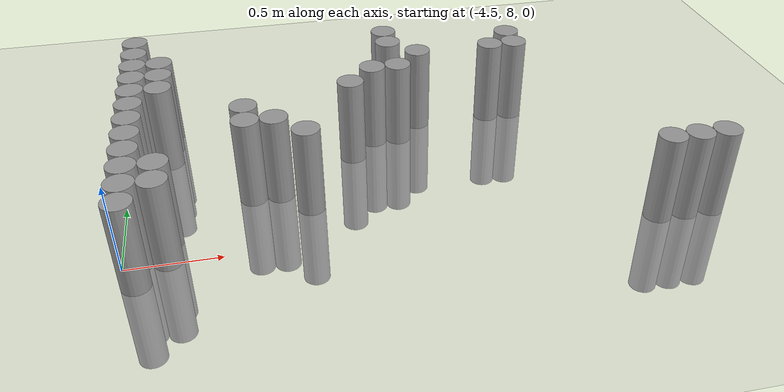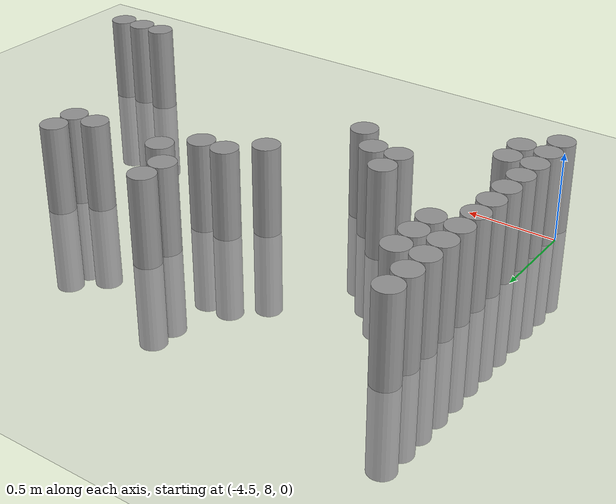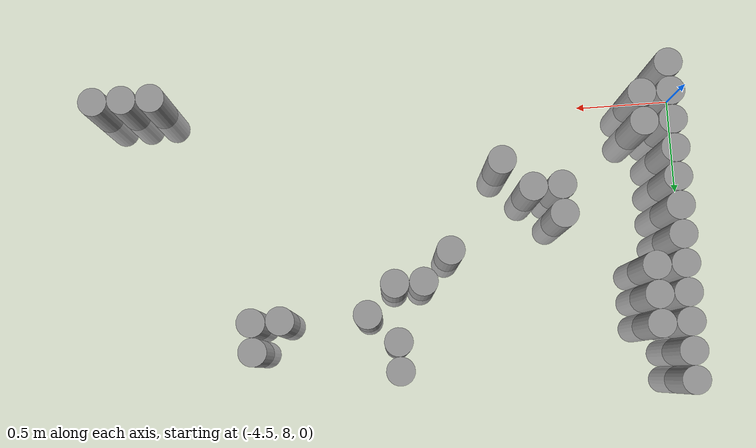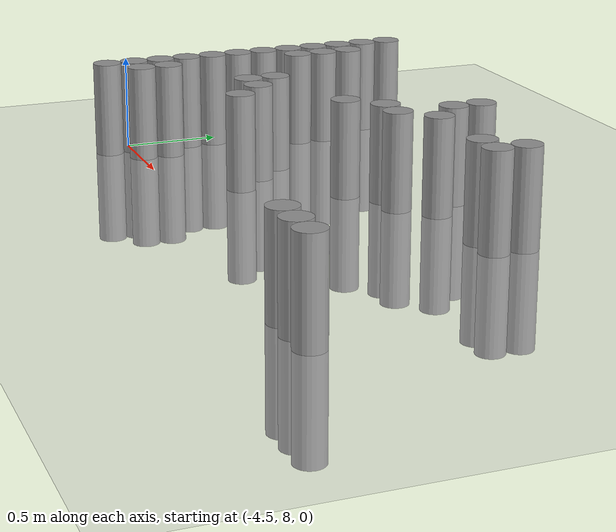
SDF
<sdf version="1.6">
 <world name="default">
  <model name="ground_plane">
   <static>1</static>
   <link name="link">
    <collision name="collision">
     <geometry><plane><normal>0 0 1</normal><size>100 100</size></plane></geometry>
     <surface><friction><ode><mu>100</mu><mu2>50</mu2></ode></friction></surface>
    </collision>
    <visual name="visual">
     <cast_shadows>0</cast_shadows>
     <geometry><plane><normal>0 0 1</normal><size>100 100</size></plane></geometry>
     <material>
      <script><uri>file://media/materials/scripts/gazebo.material</uri><name>Gazebo/Grey</name></script>
     </material>
    </visual>
   </link>
  </model>
  <model name="unit_cylinder_114">
   <pose>-4.425000 7.875000 0.000000 0.000000 0.000000 0.000000</pose>
   <link name="link">
    <inertial>
     <mass>1</mass>
     <inertia><ixx>0.145833</ixx><ixy>0</ixy><ixz>0</ixz><iyy>0.145833</iyy><iyz>0</iyz><izz>0.125</izz></inertia>
    </inertial>
    <collision name="collision">
     <geometry><cylinder><radius>0.075000</radius><length>1</length></cylinder></geometry>
    </collision>
    <visual name="visual">
     <geometry><cylinder><radius>0.075000</radius><length>1</length></cylinder></geometry>
     <material>
      <script><name>Gazebo/Grey</name><uri>file://media/materials/scripts/gazebo.material</uri></script>
     </material>
    </visual>
   </link>
  </model>
  <model name="unit_cylinder_115">
   <pose>-4.425000 8.025000 0.000000 0.000000 0.000000 0.000000</pose>
   <link name="link">
    <inertial>
     <mass>1</mass>
     <inertia><ixx>0.145833</ixx><ixy>0</ixy><ixz>0</ixz><iyy>0.145833</iyy><iyz>0</iyz><izz>0.125</izz></inertia>
    </inertial>
    <collision name="collision">
     <geometry><cylinder><radius>0.075000</radius><length>1</length></cylinder></geometry>
    </collision>
    <visual name="visual">
     <geometry><cylinder><radius>0.075000</radius><length>1</length></cylinder></geometry>
     <material>
      <script><name>Gazebo/Grey</name><uri>file://media/materials/scripts/gazebo.material</uri></script>
     </material>
    </visual>
   </link>
  </model>
  <model name="unit_cylinder_116">
   <pose>-4.425000 8.175000 0.000000 0.000000 0.000000 0.000000</pose>
   <link name="link">
    <inertial>
     <mass>1</mass>
     <inertia><ixx>0.145833</ixx><ixy>0</ixy><ixz>0</ixz><iyy>0.145833</iyy><iyz>0</iyz><izz>0.125</izz></inertia>
    </inertial>
    <collision name="collision">
     <geometry><cylinder><radius>0.075000</radius><length>1</length></cylinder></geometry>
    </collision>
    <visual name="visual">
     <geometry><cylinder><radius>0.075000</radius><length>1</length></cylinder></geometry>
     <material>
      <script><name>Gazebo/Grey</name><uri>file://media/materials/scripts/gazebo.material</uri></script>
     </material>
    </visual>
   </link>
  </model>
  <model name="unit_cylinder_117">
   <pose>-4.425000 8.325000 0.000000 0.000000 0.000000 0.000000</pose>
   <link name="link">
    <inertial>
     <mass>1</mass>
     <inertia><ixx>0.145833</ixx><ixy>0</ixy><ixz>0</ixz><iyy>0.145833</iyy><iyz>0</iyz><izz>0.125</izz></inertia>
    </inertial>
    <collision name="collision">
     <geometry><cylinder><radius>0.075000</radius><length>1</length></cylinder></geometry>
    </collision>
    <visual name="visual">
     <geometry><cylinder><radius>0.075000</radius><length>1</length></cylinder></geometry>
     <material>
      <script><name>Gazebo/Grey</name><uri>file://media/materials/scripts/gazebo.material</uri></script>
     </material>
    </visual>
   </link>
  </model>
  <model name="unit_cylinder_118">
   <pose>-4.425000 8.475000 0.000000 0.000000 0.000000 0.000000</pose>
   <link name="link">
    <inertial>
     <mass>1</mass>
     <inertia><ixx>0.145833</ixx><ixy>0</ixy><ixz>0</ixz><iyy>0.145833</iyy><iyz>0</iyz><izz>0.125</izz></inertia>
    </inertial>
    <collision name="collision">
     <geometry><cylinder><radius>0.075000</radius><length>1</length></cylinder></geometry>
    </collision>
    <visual name="visual">
     <geometry><cylinder><radius>0.075000</radius><length>1</length></cylinder></geometry>
     <material>
      <script><name>Gazebo/Grey</name><uri>file://media/materials/scripts/gazebo.material</uri></script>
     </material>
    </visual>
   </link>
  </model>
  <model name="unit_cylinder_119">
   <pose>-4.425000 8.625000 0.000000 0.000000 0.000000 0.000000</pose>
   <link name="link">
    <inertial>
     <mass>1</mass>
     <inertia><ixx>0.145833</ixx><ixy>0</ixy><ixz>0</ixz><iyy>0.145833</iyy><iyz>0</iyz><izz>0.125</izz></inertia>
    </inertial>
    <collision name="collision">
     <geometry><cylinder><radius>0.075000</radius><length>1</length></cylinder></geometry>
    </collision>
    <visual name="visual">
     <geometry><cylinder><radius>0.075000</radius><length>1</length></cylinder></geometry>
     <material>
      <script><name>Gazebo/Grey</name><uri>file://media/materials/scripts/gazebo.material</uri></script>
     </material>
    </visual>
   </link>
  </model>
  <model name="unit_cylinder_120">
   <pose>-4.425000 8.775000 0.000000 0.000000 0.000000 0.000000</pose>
   <link name="link">
    <inertial>
     <mass>1</mass>
     <inertia><ixx>0.145833</ixx><ixy>0</ixy><ixz>0</ixz><iyy>0.145833</iyy><iyz>0</iyz><izz>0.125</izz></inertia>
    </inertial>
    <collision name="collision">
     <geometry><cylinder><radius>0.075000</radius><length>1</length></cylinder></geometry>
    </collision>
    <visual name="visual">
     <geometry><cylinder><radius>0.075000</radius><length>1</length></cylinder></geometry>
     <material>
      <script><name>Gazebo/Grey</name><uri>file://media/materials/scripts/gazebo.material</uri></script>
     </material>
    </visual>
   </link>
  </model>
  <model name="unit_cylinder_121">
   <pose>-4.425000 8.925000 0.000000 0.000000 0.000000 0.000000</pose>
   <link name="link">
    <inertial>
     <mass>1</mass>
     <inertia><ixx>0.145833</ixx><ixy>0</ixy><ixz>0</ixz><iyy>0.145833</iyy><iyz>0</iyz><izz>0.125</izz></inertia>
    </inertial>
    <collision name="collision">
     <geometry><cylinder><radius>0.075000</radius><length>1</length></cylinder></geometry>
    </collision>
    <visual name="visual">
     <geometry><cylinder><radius>0.075000</radius><length>1</length></cylinder></geometry>
     <material>
      <script><name>Gazebo/Grey</name><uri>file://media/materials/scripts/gazebo.material</uri></script>
     </material>
    </visual>
   </link>
  </model>
  <model name="unit_cylinder_122">
   <pose>-4.425000 9.075000 0.000000 0.000000 0.000000 0.000000</pose>
   <link name="link">
    <inertial>
     <mass>1</mass>
     <inertia><ixx>0.145833</ixx><ixy>0</ixy><ixz>0</ixz><iyy>0.145833</iyy><iyz>0</iyz><izz>0.125</izz></inertia>
    </inertial>
    <collision name="collision">
     <geometry><cylinder><radius>0.075000</radius><length>1</length></cylinder></geometry>
    </collision>
    <visual name="visual">
     <geometry><cylinder><radius>0.075000</radius><length>1</length></cylinder></geometry>
     <material>
      <script><name>Gazebo/Grey</name><uri>file://media/materials/scripts/gazebo.material</uri></script>
     </material>
    </visual>
   </link>
  </model>
  <model name="unit_cylinder_123">
   <pose>-4.425000 9.225000 0.000000 0.000000 0.000000 0.000000</pose>
   <link name="link">
    <inertial>
     <mass>1</mass>
     <inertia><ixx>0.145833</ixx><ixy>0</ixy><ixz>0</ixz><iyy>0.145833</iyy><iyz>0</iyz><izz>0.125</izz></inertia>
    </inertial>
    <collision name="collision">
     <geometry><cylinder><radius>0.075000</radius><length>1</length></cylinder></geometry>
    </collision>
    <visual name="visual">
     <geometry><cylinder><radius>0.075000</radius><length>1</length></cylinder></geometry>
     <material>
      <script><name>Gazebo/Grey</name><uri>file://media/materials/scripts/gazebo.material</uri></script>
     </material>
    </visual>
   </link>
  </model>
  <model name="unit_cylinder_124">
   <pose>-4.425000 9.375000 0.000000 0.000000 0.000000 0.000000</pose>
   <link name="link">
    <inertial>
     <mass>1</mass>
     <inertia><ixx>0.145833</ixx><ixy>0</ixy><ixz>0</ixz><iyy>0.145833</iyy><iyz>0</iyz><izz>0.125</izz></inertia>
    </inertial>
    <collision name="collision">
     <geometry><cylinder><radius>0.075000</radius><length>1</length></cylinder></geometry>
    </collision>
    <visual name="visual">
     <geometry><cylinder><radius>0.075000</radius><length>1</length></cylinder></geometry>
     <material>
      <script><name>Gazebo/Grey</name><uri>file://media/materials/scripts/gazebo.material</uri></script>
     </material>
    </visual>
   </link>
  </model>
  <model name="unit_cylinder_125">
   <pose>-4.425000 9.525000 0.000000 0.000000 0.000000 0.000000</pose>
   <link name="link">
    <inertial>
     <mass>1</mass>
     <inertia><ixx>0.145833</ixx><ixy>0</ixy><ixz>0</ixz><iyy>0.145833</iyy><iyz>0</iyz><izz>0.125</izz></inertia>
    </inertial>
    <collision name="collision">
     <geometry><cylinder><radius>0.075000</radius><length>1</length></cylinder></geometry>
    </collision>
    <visual name="visual">
     <geometry><cylinder><radius>0.075000</radius><length>1</length></cylinder></geometry>
     <material>
      <script><name>Gazebo/Grey</name><uri>file://media/materials/scripts/gazebo.material</uri></script>
     </material>
    </visual>
   </link>
  </model>
  <model name="unit_cylinder_131">
   <pose>-4.275000 8.025000 0.000000 0.000000 0.000000 0.000000</pose>
   <link name="link">
    <inertial>
     <mass>1</mass>
     <inertia><ixx>0.145833</ixx><ixy>0</ixy><ixz>0</ixz><iyy>0.145833</iyy><iyz>0</iyz><izz>0.125</izz></inertia>
    </inertial>
    <collision name="collision">
     <geometry><cylinder><radius>0.075000</radius><length>1</length></cylinder></geometry>
    </collision>
    <visual name="visual">
     <geometry><cylinder><radius>0.075000</radius><length>1</length></cylinder></geometry>
     <material>
      <script><name>Gazebo/Grey</name><uri>file://media/materials/scripts/gazebo.material</uri></script>
     </material>
    </visual>
   </link>
  </model>
  <model name="unit_cylinder_132">
   <pose>-4.275000 8.175000 0.000000 0.000000 0.000000 0.000000</pose>
   <link name="link">
    <inertial>
     <mass>1</mass>
     <inertia><ixx>0.145833</ixx><ixy>0</ixy><ixz>0</ixz><iyy>0.145833</iyy><iyz>0</iyz><izz>0.125</izz></inertia>
    </inertial>
    <collision name="collision">
     <geometry><cylinder><radius>0.075000</radius><length>1</length></cylinder></geometry>
    </collision>
    <visual name="visual">
     <geometry><cylinder><radius>0.075000</radius><length>1</length></cylinder></geometry>
     <material>
      <script><name>Gazebo/Grey</name><uri>file://media/materials/scripts/gazebo.material</uri></script>
     </material>
    </visual>
   </link>
  </model>
  <model name="unit_cylinder_133">
   <pose>-4.275000 8.925000 0.000000 0.000000 0.000000 0.000000</pose>
   <link name="link">
    <inertial>
     <mass>1</mass>
     <inertia><ixx>0.145833</ixx><ixy>0</ixy><ixz>0</ixz><iyy>0.145833</iyy><iyz>0</iyz><izz>0.125</izz></inertia>
    </inertial>
    <collision name="collision">
     <geometry><cylinder><radius>0.075000</radius><length>1</length></cylinder></geometry>
    </collision>
    <visual name="visual">
     <geometry><cylinder><radius>0.075000</radius><length>1</length></cylinder></geometry>
     <material>
      <script><name>Gazebo/Grey</name><uri>file://media/materials/scripts/gazebo.material</uri></script>
     </material>
    </visual>
   </link>
  </model>
  <model name="unit_cylinder_134">
   <pose>-4.275000 9.075000 0.000000 0.000000 0.000000 0.000000</pose>
   <link name="link">
    <inertial>
     <mass>1</mass>
     <inertia><ixx>0.145833</ixx><ixy>0</ixy><ixz>0</ixz><iyy>0.145833</iyy><iyz>0</iyz><izz>0.125</izz></inertia>
    </inertial>
    <collision name="collision">
     <geometry><cylinder><radius>0.075000</radius><length>1</length></cylinder></geometry>
    </collision>
    <visual name="visual">
     <geometry><cylinder><radius>0.075000</radius><length>1</length></cylinder></geometry>
     <material>
      <script><name>Gazebo/Grey</name><uri>file://media/materials/scripts/gazebo.material</uri></script>
     </material>
    </visual>
   </link>
  </model>
  <model name="unit_cylinder_135">
   <pose>-4.275000 9.225000 0.000000 0.000000 0.000000 0.000000</pose>
   <link name="link">
    <inertial>
     <mass>1</mass>
     <inertia><ixx>0.145833</ixx><ixy>0</ixy><ixz>0</ixz><iyy>0.145833</iyy><iyz>0</iyz><izz>0.125</izz></inertia>
    </inertial>
    <collision name="collision">
     <geometry><cylinder><radius>0.075000</radius><length>1</length></cylinder></geometry>
    </collision>
    <visual name="visual">
     <geometry><cylinder><radius>0.075000</radius><length>1</length></cylinder></geometry>
     <material>
      <script><name>Gazebo/Grey</name><uri>file://media/materials/scripts/gazebo.material</uri></script>
     </material>
    </visual>
   </link>
  </model>
  <model name="unit_cylinder_145">
   <pose>-3.825000 8.475000 0.000000 0.000000 0.000000 0.000000</pose>
   <link name="link">
    <inertial>
     <mass>1</mass>
     <inertia><ixx>0.145833</ixx><ixy>0</ixy><ixz>0</ixz><iyy>0.145833</iyy><iyz>0</iyz><izz>0.125</izz></inertia>
    </inertial>
    <collision name="collision">
     <geometry><cylinder><radius>0.075000</radius><length>1</length></cylinder></geometry>
    </collision>
    <visual name="visual">
     <geometry><cylinder><radius>0.075000</radius><length>1</length></cylinder></geometry>
     <material>
      <script><name>Gazebo/Grey</name><uri>file://media/materials/scripts/gazebo.material</uri></script>
     </material>
    </visual>
   </link>
  </model>
  <model name="unit_cylinder_146">
   <pose>-3.825000 8.625000 0.000000 0.000000 0.000000 0.000000</pose>
   <link name="link">
    <inertial>
     <mass>1</mass>
     <inertia><ixx>0.145833</ixx><ixy>0</ixy><ixz>0</ixz><iyy>0.145833</iyy><iyz>0</iyz><izz>0.125</izz></inertia>
    </inertial>
    <collision name="collision">
     <geometry><cylinder><radius>0.075000</radius><length>1</length></cylinder></geometry>
    </collision>
    <visual name="visual">
     <geometry><cylinder><radius>0.075000</radius><length>1</length></cylinder></geometry>
     <material>
      <script><name>Gazebo/Grey</name><uri>file://media/materials/scripts/gazebo.material</uri></script>
     </material>
    </visual>
   </link>
  </model>
  <model name="unit_cylinder_149">
   <pose>-3.675000 8.475000 0.000000 0.000000 0.000000 0.000000</pose>
   <link name="link">
    <inertial>
     <mass>1</mass>
     <inertia><ixx>0.145833</ixx><ixy>0</ixy><ixz>0</ixz><iyy>0.145833</iyy><iyz>0</iyz><izz>0.125</izz></inertia>
    </inertial>
    <collision name="collision">
     <geometry><cylinder><radius>0.075000</radius><length>1</length></cylinder></geometry>
    </collision>
    <visual name="visual">
     <geometry><cylinder><radius>0.075000</radius><length>1</length></cylinder></geometry>
     <material>
      <script><name>Gazebo/Grey</name><uri>file://media/materials/scripts/gazebo.material</uri></script>
     </material>
    </visual>
   </link>
  </model>
  <model name="unit_cylinder_150">
   <pose>-3.525000 8.325000 0.000000 0.000000 0.000000 0.000000</pose>
   <link name="link">
    <inertial>
     <mass>1</mass>
     <inertia><ixx>0.145833</ixx><ixy>0</ixy><ixz>0</ixz><iyy>0.145833</iyy><iyz>0</iyz><izz>0.125</izz></inertia>
    </inertial>
    <collision name="collision">
     <geometry><cylinder><radius>0.075000</radius><length>1</length></cylinder></geometry>
    </collision>
    <visual name="visual">
     <geometry><cylinder><radius>0.075000</radius><length>1</length></cylinder></geometry>
     <material>
      <script><name>Gazebo/Grey</name><uri>file://media/materials/scripts/gazebo.material</uri></script>
     </material>
    </visual>
   </link>
  </model>
  <model name="unit_cylinder_151">
   <pose>-3.225000 8.775000 0.000000 0.000000 0.000000 0.000000</pose>
   <link name="link">
    <inertial>
     <mass>1</mass>
     <inertia><ixx>0.145833</ixx><ixy>0</ixy><ixz>0</ixz><iyy>0.145833</iyy><iyz>0</iyz><izz>0.125</izz></inertia>
    </inertial>
    <collision name="collision">
     <geometry><cylinder><radius>0.075000</radius><length>1</length></cylinder></geometry>
    </collision>
    <visual name="visual">
     <geometry><cylinder><radius>0.075000</radius><length>1</length></cylinder></geometry>
     <material>
      <script><name>Gazebo/Grey</name><uri>file://media/materials/scripts/gazebo.material</uri></script>
     </material>
    </visual>
   </link>
  </model>
  <model name="unit_cylinder_153">
   <pose>-3.075000 8.925000 0.000000 0.000000 0.000000 0.000000</pose>
   <link name="link">
    <inertial>
     <mass>1</mass>
     <inertia><ixx>0.145833</ixx><ixy>0</ixy><ixz>0</ixz><iyy>0.145833</iyy><iyz>0</iyz><izz>0.125</izz></inertia>
    </inertial>
    <collision name="collision">
     <geometry><cylinder><radius>0.075000</radius><length>1</length></cylinder></geometry>
    </collision>
    <visual name="visual">
     <geometry><cylinder><radius>0.075000</radius><length>1</length></cylinder></geometry>
     <material>
      <script><name>Gazebo/Grey</name><uri>file://media/materials/scripts/gazebo.material</uri></script>
     </material>
    </visual>
   </link>
  </model>
  <model name="unit_cylinder_154">
   <pose>-2.925000 8.925000 0.000000 0.000000 0.000000 0.000000</pose>
   <link name="link">
    <inertial>
     <mass>1</mass>
     <inertia><ixx>0.145833</ixx><ixy>0</ixy><ixz>0</ixz><iyy>0.145833</iyy><iyz>0</iyz><izz>0.125</izz></inertia>
    </inertial>
    <collision name="collision">
     <geometry><cylinder><radius>0.075000</radius><length>1</length></cylinder></geometry>
    </collision>
    <visual name="visual">
     <geometry><cylinder><radius>0.075000</radius><length>1</length></cylinder></geometry>
     <material>
      <script><name>Gazebo/Grey</name><uri>file://media/materials/scripts/gazebo.material</uri></script>
     </material>
    </visual>
   </link>
  </model>
  <model name="unit_cylinder_155">
   <pose>-2.925000 9.225000 0.000000 0.000000 0.000000 0.000000</pose>
   <link name="link">
    <inertial>
     <mass>1</mass>
     <inertia><ixx>0.145833</ixx><ixy>0</ixy><ixz>0</ixz><iyy>0.145833</iyy><iyz>0</iyz><izz>0.125</izz></inertia>
    </inertial>
    <collision name="collision">
     <geometry><cylinder><radius>0.075000</radius><length>1</length></cylinder></geometry>
    </collision>
    <visual name="visual">
     <geometry><cylinder><radius>0.075000</radius><length>1</length></cylinder></geometry>
     <material>
      <script><name>Gazebo/Grey</name><uri>file://media/materials/scripts/gazebo.material</uri></script>
     </material>
    </visual>
   </link>
  </model>
  <model name="unit_cylinder_156">
   <pose>-2.925000 9.375000 0.000000 0.000000 0.000000 0.000000</pose>
   <link name="link">
    <inertial>
     <mass>1</mass>
     <inertia><ixx>0.145833</ixx><ixy>0</ixy><ixz>0</ixz><iyy>0.145833</iyy><iyz>0</iyz><izz>0.125</izz></inertia>
    </inertial>
    <collision name="collision">
     <geometry><cylinder><radius>0.075000</radius><length>1</length></cylinder></geometry>
    </collision>
    <visual name="visual">
     <geometry><cylinder><radius>0.075000</radius><length>1</length></cylinder></geometry>
     <material>
      <script><name>Gazebo/Grey</name><uri>file://media/materials/scripts/gazebo.material</uri></script>
     </material>
    </visual>
   </link>
  </model>
  <model name="unit_cylinder_159">
   <pose>-2.775000 9.075000 0.000000 0.000000 0.000000 0.000000</pose>
   <link name="link">
    <inertial>
     <mass>1</mass>
     <inertia><ixx>0.145833</ixx><ixy>0</ixy><ixz>0</ixz><iyy>0.145833</iyy><iyz>0</iyz><izz>0.125</izz></inertia>
    </inertial>
    <collision name="collision">
     <geometry><cylinder><radius>0.075000</radius><length>1</length></cylinder></geometry>
    </collision>
    <visual name="visual">
     <geometry><cylinder><radius>0.075000</radius><length>1</length></cylinder></geometry>
     <material>
      <script><name>Gazebo/Grey</name><uri>file://media/materials/scripts/gazebo.material</uri></script>
     </material>
    </visual>
   </link>
  </model>
  <model name="unit_cylinder_161">
   <pose>-2.325000 9.075000 0.000000 0.000000 0.000000 0.000000</pose>
   <link name="link">
    <inertial>
     <mass>1</mass>
     <inertia><ixx>0.145833</ixx><ixy>0</ixy><ixz>0</ixz><iyy>0.145833</iyy><iyz>0</iyz><izz>0.125</izz></inertia>
    </inertial>
    <collision name="collision">
     <geometry><cylinder><radius>0.075000</radius><length>1</length></cylinder></geometry>
    </collision>
    <visual name="visual">
     <geometry><cylinder><radius>0.075000</radius><length>1</length></cylinder></geometry>
     <material>
      <script><name>Gazebo/Grey</name><uri>file://media/materials/scripts/gazebo.material</uri></script>
     </material>
    </visual>
   </link>
  </model>
  <model name="unit_cylinder_163">
   <pose>-2.175000 9.075000 0.000000 0.000000 0.000000 0.000000</pose>
   <link name="link">
    <inertial>
     <mass>1</mass>
     <inertia><ixx>0.145833</ixx><ixy>0</ixy><ixz>0</ixz><iyy>0.145833</iyy><iyz>0</iyz><izz>0.125</izz></inertia>
    </inertial>
    <collision name="collision">
     <geometry><cylinder><radius>0.075000</radius><length>1</length></cylinder></geometry>
    </collision>
    <visual name="visual">
     <geometry><cylinder><radius>0.075000</radius><length>1</length></cylinder></geometry>
     <material>
      <script><name>Gazebo/Grey</name><uri>file://media/materials/scripts/gazebo.material</uri></script>
     </material>
    </visual>
   </link>
  </model>
  <model name="unit_cylinder_164">
   <pose>-2.175000 9.225000 0.000000 0.000000 0.000000 0.000000</pose>
   <link name="link">
    <inertial>
     <mass>1</mass>
     <inertia><ixx>0.145833</ixx><ixy>0</ixy><ixz>0</ixz><iyy>0.145833</iyy><iyz>0</iyz><izz>0.125</izz></inertia>
    </inertial>
    <collision name="collision">
     <geometry><cylinder><radius>0.075000</radius><length>1</length></cylinder></geometry>
    </collision>
    <visual name="visual">
     <geometry><cylinder><radius>0.075000</radius><length>1</length></cylinder></geometry>
     <material>
      <script><name>Gazebo/Grey</name><uri>file://media/materials/scripts/gazebo.material</uri></script>
     </material>
    </visual>
   </link>
  </model>
  <model name="unit_cylinder_168">
   <pose>-1.725000 7.875000 0.000000 0.000000 0.000000 0.000000</pose>
   <link name="link">
    <inertial>
     <mass>1</mass>
     <inertia><ixx>0.145833</ixx><ixy>0</ixy><ixz>0</ixz><iyy>0.145833</iyy><iyz>0</iyz><izz>0.125</izz></inertia>
    </inertial>
    <collision name="collision">
     <geometry><cylinder><radius>0.075000</radius><length>1</length></cylinder></geometry>
    </collision>
    <visual name="visual">
     <geometry><cylinder><radius>0.075000</radius><length>1</length></cylinder></geometry>
     <material>
      <script><name>Gazebo/Grey</name><uri>file://media/materials/scripts/gazebo.material</uri></script>
     </material>
    </visual>
   </link>
  </model>
  <model name="unit_cylinder_172">
   <pose>-1.575000 7.875000 0.000000 0.000000 0.000000 0.000000</pose>
   <link name="link">
    <inertial>
     <mass>1</mass>
     <inertia><ixx>0.145833</ixx><ixy>0</ixy><ixz>0</ixz><iyy>0.145833</iyy><iyz>0</iyz><izz>0.125</izz></inertia>
    </inertial>
    <collision name="collision">
     <geometry><cylinder><radius>0.075000</radius><length>1</length></cylinder></geometry>
    </collision>
    <visual name="visual">
     <geometry><cylinder><radius>0.075000</radius><length>1</length></cylinder></geometry>
     <material>
      <script><name>Gazebo/Grey</name><uri>file://media/materials/scripts/gazebo.material</uri></script>
     </material>
    </visual>
   </link>
  </model>
  <model name="unit_cylinder_176">
   <pose>-1.425000 7.875000 0.000000 0.000000 0.000000 0.000000</pose>
   <link name="link">
    <inertial>
     <mass>1</mass>
     <inertia><ixx>0.145833</ixx><ixy>0</ixy><ixz>0</ixz><iyy>0.145833</iyy><iyz>0</iyz><izz>0.125</izz></inertia>
    </inertial>
    <collision name="collision">
     <geometry><cylinder><radius>0.075000</radius><length>1</length></cylinder></geometry>
    </collision>
    <visual name="visual">
     <geometry><cylinder><radius>0.075000</radius><length>1</length></cylinder></geometry>
     <material>
      <script><name>Gazebo/Grey</name><uri>file://media/materials/scripts/gazebo.material</uri></script>
     </material>
    </visual>
   </link>
  </model>
 </world>
</sdf>
